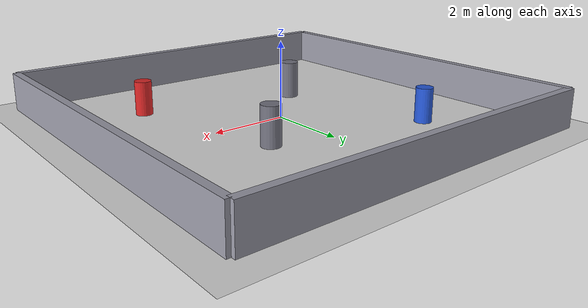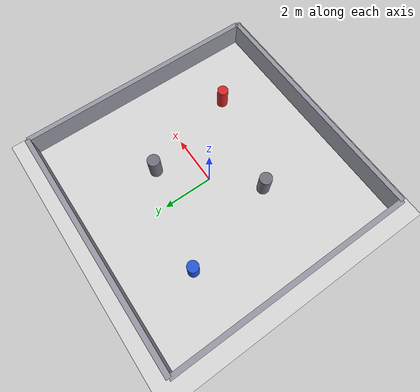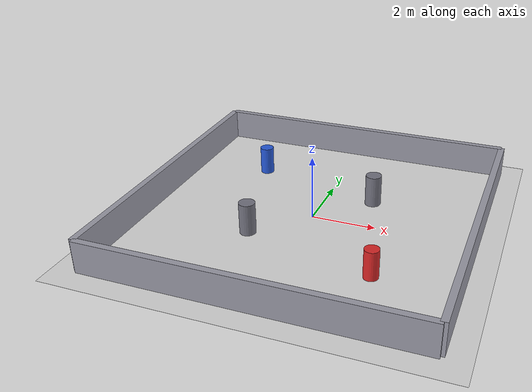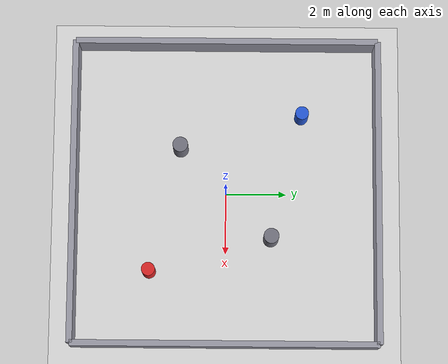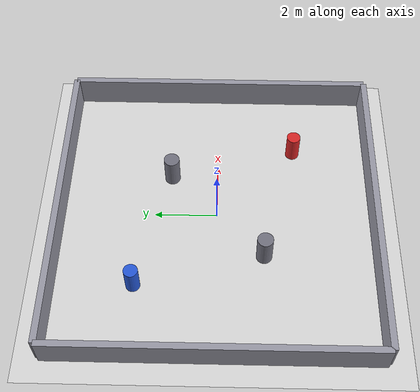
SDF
<?xml version="1.0" ?>
<!-- |    This document was autogenerated by xacro from /home/hmn-cjy/liuliuqiu/WildSpatial/data/gz_models/worlds/open_plaza_dynamic.sdf.xacro | -->
<!-- |    EDITING THIS FILE BY HAND IS NOT RECOMMENDED                                 | -->
<sdf version="1.6">
  <world name="default">
    <plugin filename="gz-sim-physics-system" name="gz::sim::systems::Physics"/>
    <plugin filename="gz-sim-user-commands-system" name="gz::sim::systems::UserCommands"/>
    <plugin filename="gz-sim-scene-broadcaster-system" name="gz::sim::systems::SceneBroadcaster"/>
    <plugin filename="gz-sim-sensors-system" name="gz::sim::systems::Sensors">
      <render_engine>ogre2</render_engine>
    </plugin>
    <plugin filename="gz-sim-imu-system" name="gz::sim::systems::Imu"/>
    <light name="sun" type="directional">
      <cast_shadows>0</cast_shadows>
      <pose>0 0 10 0 0 0</pose>
      <diffuse>0.8 0.8 0.8 1</diffuse>
      <specular>0.8 0.8 0.8 1</specular>
      <direction>-0.5 0.1 -0.9</direction>
    </light>
    <model name="ground_plane">
      <static>1</static>
      <link name="link">
        <collision name="collision">
          <geometry>
            <plane>
              <normal>0 0 1</normal>
              <size>100 100</size>
            </plane>
          </geometry>
        </collision>
        <visual name="visual">
          <geometry>
            <plane>
              <normal>0 0 1</normal>
              <size>100 100</size>
            </plane>
          </geometry>
          <material>
            <ambient>0.85 0.85 0.85 1</ambient>
            <diffuse>0.85 0.85 0.85 1</diffuse>
            <specular>0.3 0.3 0.3 1</specular>
          </material>
        </visual>
      </link>
    </model>
    <scene>
      <shadows>0</shadows>
    </scene>
    <physics name="3ms" type="ode">
      <max_step_size>0.003</max_step_size>
      <real_time_factor>1</real_time_factor>
    </physics>
    <!-- ===== 四周外墙（围成 10m×10m 开阔场地）===== -->
    <model name="wall_n">
      <static>1</static>
      <link name="l">
        <pose>0 5.0 0.5 0 0 0</pose>
        <collision name="c">
          <geometry>
            <box>
              <size>10 0.2 1</size>
            </box>
          </geometry>
        </collision>
        <visual name="v">
          <geometry>
            <box>
              <size>10 0.2 1</size>
            </box>
          </geometry>
          <material>
            <diffuse>0.6 0.6 0.65 1</diffuse>
          </material>
        </visual>
      </link>
    </model>
    <model name="wall_s">
      <static>1</static>
      <link name="l">
        <pose>0 -5.0 0.5 0 0 0</pose>
        <collision name="c">
          <geometry>
            <box>
              <size>10 0.2 1</size>
            </box>
          </geometry>
        </collision>
        <visual name="v">
          <geometry>
            <box>
              <size>10 0.2 1</size>
            </box>
          </geometry>
          <material>
            <diffuse>0.6 0.6 0.65 1</diffuse>
          </material>
        </visual>
      </link>
    </model>
    <model name="wall_e">
      <static>1</static>
      <link name="l">
        <pose>5.0 0 0.5 0 0 0</pose>
        <collision name="c">
          <geometry>
            <box>
              <size>0.2 10 1</size>
            </box>
          </geometry>
        </collision>
        <visual name="v">
          <geometry>
            <box>
              <size>0.2 10 1</size>
            </box>
          </geometry>
          <material>
            <diffuse>0.6 0.6 0.65 1</diffuse>
          </material>
        </visual>
      </link>
    </model>
    <model name="wall_w">
      <static>1</static>
      <link name="l">
        <pose>-5.0 0 0.5 0 0 0</pose>
        <collision name="c">
          <geometry>
            <box>
              <size>0.2 10 1</size>
            </box>
          </geometry>
        </collision>
        <visual name="v">
          <geometry>
            <box>
              <size>0.2 10 1</size>
            </box>
          </geometry>
          <material>
            <diffuse>0.6 0.6 0.65 1</diffuse>
          </material>
        </visual>
      </link>
    </model>
    <!-- ===== 中央两个静态柱子（几何参考）===== -->
    <model name="pillar_a">
      <static>1</static>
      <link name="l">
        <pose>-1.5 -1.5 0.5 0 0 0</pose>
        <collision name="c">
          <geometry>
            <cylinder>
              <radius>0.25</radius>
              <length>1.0</length>
            </cylinder>
          </geometry>
        </collision>
        <visual name="v">
          <geometry>
            <cylinder>
              <radius>0.25</radius>
              <length>1.0</length>
            </cylinder>
          </geometry>
          <material>
            <diffuse>0.45 0.45 0.5 1</diffuse>
          </material>
        </visual>
      </link>
    </model>
    <model name="pillar_b">
      <static>1</static>
      <link name="l">
        <pose>1.5 1.5 0.5 0 0 0</pose>
        <collision name="c">
          <geometry>
            <cylinder>
              <radius>0.25</radius>
              <length>1.0</length>
            </cylinder>
          </geometry>
        </collision>
        <visual name="v">
          <geometry>
            <cylinder>
              <radius>0.25</radius>
              <length>1.0</length>
            </cylinder>
          </geometry>
          <material>
            <diffuse>0.45 0.45 0.5 1</diffuse>
          </material>
        </visual>
      </link>
    </model>
    <model name="pedestrian">
      <pose>2.6 -2.5 0.45 0 0 0</pose>
      <link name="body">
        <inertial>
          <mass>60</mass>
          <inertia>
            <ixx>6</ixx>
            <iyy>6</iyy>
            <izz>6</izz>
          </inertia>
        </inertial>
        <collision name="c">
          <geometry>
            <cylinder>
              <radius>0.22</radius>
              <length>0.9</length>
            </cylinder>
          </geometry>
          <surface>
            <friction>
              <ode>
                <mu>0</mu>
                <mu2>0</mu2>
              </ode>
            </friction>
            <contact>
              <ode>
                <kp>1e4</kp>
                <kd>1</kd>
              </ode>
            </contact>
          </surface>
        </collision>
        <visual name="v">
          <geometry>
            <cylinder>
              <radius>0.22</radius>
              <length>0.9</length>
            </cylinder>
          </geometry>
          <material>
            <diffuse>0.85 0.15 0.15 1</diffuse>
          </material>
        </visual>
      </link>
      <plugin filename="gz-sim-velocity-control-system" name="gz::sim::systems::VelocityControl">
        <link_name>body</link_name>
        <initial_linear>0 0.35 0</initial_linear>
      </plugin>
    </model>
    <model name="pedestrian2">
      <pose>-2.6 2.5 0.45 0 0 0</pose>
      <link name="body">
        <inertial>
          <mass>60</mass>
          <inertia>
            <ixx>6</ixx>
            <iyy>6</iyy>
            <izz>6</izz>
          </inertia>
        </inertial>
        <collision name="c">
          <geometry>
            <cylinder>
              <radius>0.22</radius>
              <length>0.9</length>
            </cylinder>
          </geometry>
          <surface>
            <friction>
              <ode>
                <mu>0</mu>
                <mu2>0</mu2>
              </ode>
            </friction>
          </surface>
        </collision>
        <visual name="v">
          <geometry>
            <cylinder>
              <radius>0.22</radius>
              <length>0.9</length>
            </cylinder>
          </geometry>
          <material>
            <diffuse>0.15 0.35 0.85 1</diffuse>
          </material>
        </visual>
      </link>
      <plugin filename="gz-sim-velocity-control-system" name="gz::sim::systems::VelocityControl">
        <link_name>body</link_name>
        <initial_linear>0 -0.35 0</initial_linear>
      </plugin>
    </model>
  </world>
</sdf>
